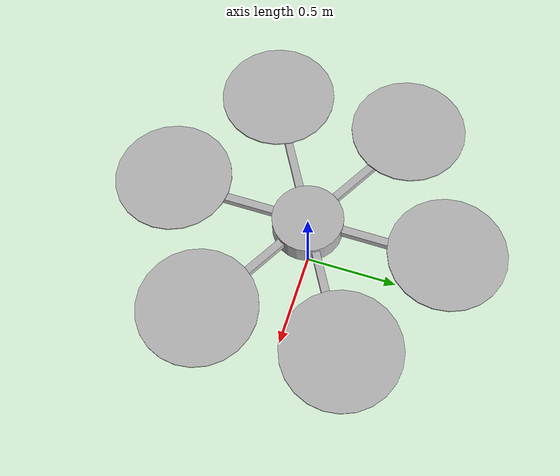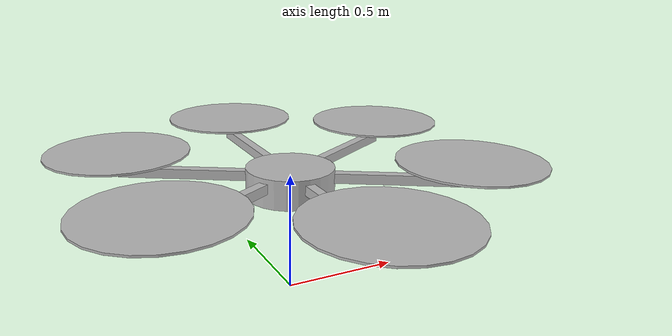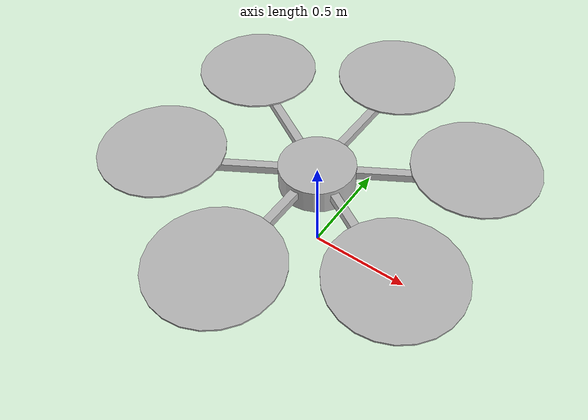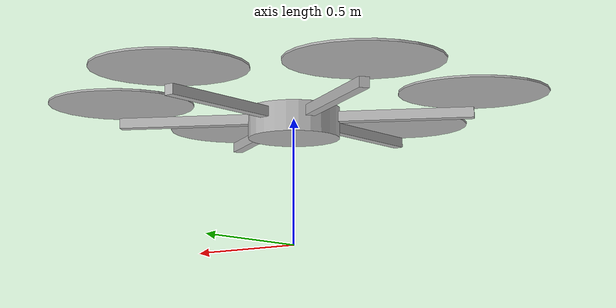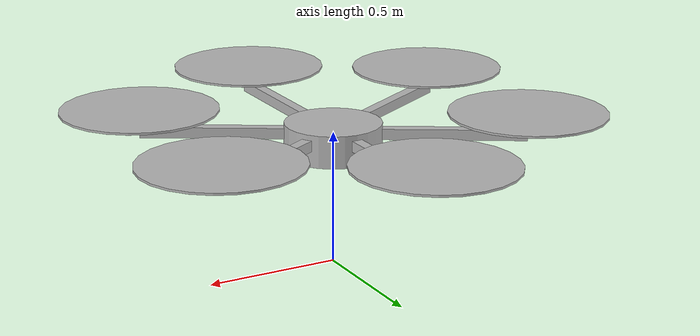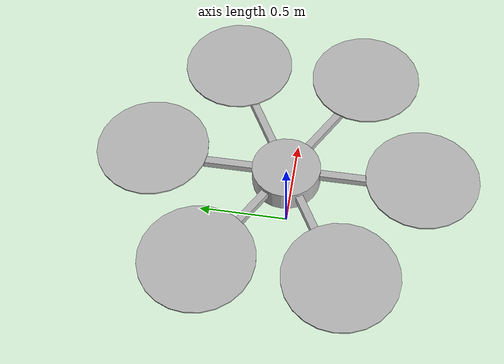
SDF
<?xml version='1.0' encoding='UTF-8'?>
<sdf version="1.9">
  <model name="skyscrub">
    <pose>0 0 0.48 0 0 0</pose>
    <static>false</static>
    <link name="base_link">
      <inertial>
        <mass>18.251000</mass>
        <inertia>
          <ixx>1.629577</ixx>
          <iyy>1.629577</iyy>
          <izz>3.133409</izz>
        </inertia>
      </inertial>
      <visual name="main_body_visual">
        <geometry>
          <cylinder>
            <radius>0.18</radius>
            <length>0.12</length>
          </cylinder>
        </geometry>
      </visual>
      <collision name="main_body_collision">
        <geometry>
          <cylinder>
            <radius>0.18</radius>
            <length>0.12</length>
          </cylinder>
        </geometry>
      </collision>
      <visual name="arm_0_visual">
        <pose>0.000000 0.351750 0.020000 0 0 1.57079633</pose>
        <geometry>
          <box>
            <size>0.703500 0.040 0.040</size>
          </box>
        </geometry>
      </visual>
      <collision name="arm_0_collision">
        <pose>0.000000 0.351750 0.020000 0 0 1.57079633</pose>
        <geometry>
          <box>
            <size>0.703500 0.035 0.035</size>
          </box>
        </geometry>
      </collision>
      <visual name="arm_1_visual">
        <pose>0.000000 -0.351750 0.020000 0 0 -1.57079633</pose>
        <geometry>
          <box>
            <size>0.703500 0.040 0.040</size>
          </box>
        </geometry>
      </visual>
      <collision name="arm_1_collision">
        <pose>0.000000 -0.351750 0.020000 0 0 -1.57079633</pose>
        <geometry>
          <box>
            <size>0.703500 0.035 0.035</size>
          </box>
        </geometry>
      </collision>
      <visual name="arm_2_visual">
        <pose>0.304624 -0.175875 0.020000 0 0 -0.52359878</pose>
        <geometry>
          <box>
            <size>0.703500 0.040 0.040</size>
          </box>
        </geometry>
      </visual>
      <collision name="arm_2_collision">
        <pose>0.304624 -0.175875 0.020000 0 0 -0.52359878</pose>
        <geometry>
          <box>
            <size>0.703500 0.035 0.035</size>
          </box>
        </geometry>
      </collision>
      <visual name="arm_3_visual">
        <pose>-0.304624 0.175875 0.020000 0 0 2.61799388</pose>
        <geometry>
          <box>
            <size>0.703500 0.040 0.040</size>
          </box>
        </geometry>
      </visual>
      <collision name="arm_3_collision">
        <pose>-0.304624 0.175875 0.020000 0 0 2.61799388</pose>
        <geometry>
          <box>
            <size>0.703500 0.035 0.035</size>
          </box>
        </geometry>
      </collision>
      <visual name="arm_4_visual">
        <pose>0.304624 0.175875 0.020000 0 0 0.52359878</pose>
        <geometry>
          <box>
            <size>0.703500 0.040 0.040</size>
          </box>
        </geometry>
      </visual>
      <collision name="arm_4_collision">
        <pose>0.304624 0.175875 0.020000 0 0 0.52359878</pose>
        <geometry>
          <box>
            <size>0.703500 0.035 0.035</size>
          </box>
        </geometry>
      </collision>
      <visual name="arm_5_visual">
        <pose>-0.304624 -0.175875 0.020000 0 0 -2.61799388</pose>
        <geometry>
          <box>
            <size>0.703500 0.040 0.040</size>
          </box>
        </geometry>
      </visual>
      <collision name="arm_5_collision">
        <pose>-0.304624 -0.175875 0.020000 0 0 -2.61799388</pose>
        <geometry>
          <box>
            <size>0.703500 0.035 0.035</size>
          </box>
        </geometry>
      </collision>
      <sensor name="air_pressure_sensor" type="air_pressure">
        <gz_frame_id>base_link</gz_frame_id>
        <always_on>1</always_on>
        <update_rate>50</update_rate>
        <air_pressure>
          <pressure>
            <noise type="gaussian">
              <mean>0</mean>
              <stddev>3</stddev>
            </noise>
          </pressure>
        </air_pressure>
      </sensor>
      <sensor name="magnetometer_sensor" type="magnetometer">
        <gz_frame_id>base_link</gz_frame_id>
        <always_on>1</always_on>
        <update_rate>100</update_rate>
        <magnetometer>
          <x>
            <noise type="gaussian">
              <mean>0</mean>
              <stddev>0.0001</stddev>
            </noise>
          </x>
          <y>
            <noise type="gaussian">
              <mean>0</mean>
              <stddev>0.0001</stddev>
            </noise>
          </y>
          <z>
            <noise type="gaussian">
              <mean>0</mean>
              <stddev>0.0001</stddev>
            </noise>
          </z>
        </magnetometer>
      </sensor>
      <sensor name="imu_sensor" type="imu">
        <gz_frame_id>base_link</gz_frame_id>
        <always_on>1</always_on>
        <update_rate>250</update_rate>
        <imu>
          <angular_velocity>
            <x>
              <noise type="gaussian">
                <mean>0.0</mean>
                <stddev>0.0008726646</stddev>
              </noise>
            </x>
            <y>
              <noise type="gaussian">
                <mean>0.0</mean>
                <stddev>0.0008726646</stddev>
              </noise>
            </y>
            <z>
              <noise type="gaussian">
                <mean>0.0</mean>
                <stddev>0.0008726646</stddev>
              </noise>
            </z>
          </angular_velocity>
          <linear_acceleration>
            <x>
              <noise type="gaussian">
                <mean>0.0</mean>
                <stddev>0.00637</stddev>
              </noise>
            </x>
            <y>
              <noise type="gaussian">
                <mean>0.0</mean>
                <stddev>0.00637</stddev>
              </noise>
            </y>
            <z>
              <noise type="gaussian">
                <mean>0.0</mean>
                <stddev>0.00686</stddev>
              </noise>
            </z>
          </linear_acceleration>
        </imu>
      </sensor>
      <sensor name="navsat_sensor" type="navsat">
        <gz_frame_id>base_link</gz_frame_id>
        <always_on>1</always_on>
        <update_rate>30</update_rate>
      </sensor>

      <!-- SkyScrub V0.3 front facade standoff sensor -->
      <sensor name="front_facade_range" type="gpu_lidar">
        <!-- +X is forward. Sensor is slightly ahead of the body. -->
        <pose>0.22 0 0.05 0 0 0</pose>

        <topic>/skyscrub/front/range</topic>

        <always_on>true</always_on>
        <update_rate>20</update_rate>
        <visualize>true</visualize>

        <ray>
          <scan>
            <horizontal>
              <samples>5</samples>
              <resolution>1</resolution>

              <!-- Narrow approximately 2 degree field of view -->
              <min_angle>-0.0174533</min_angle>
              <max_angle>0.0174533</max_angle>
            </horizontal>

            <vertical>
              <samples>1</samples>
              <resolution>1</resolution>
              <min_angle>0</min_angle>
              <max_angle>0</max_angle>
            </vertical>
          </scan>

          <range>
            <min>0.20</min>
            <max>20.0</max>
            <resolution>0.01</resolution>
          </range>
        </ray>
      </sensor>

    </link>
    <link name="rotor_0">
      <pose>0.000000 0.703500 0.100000 0 0 0</pose>
      <gravity>true</gravity>
      <inertial>
        <mass>0.107000</mass>
        <inertia>
          <ixx>0.00228295</ixx>
          <iyy>0.00228295</iyy>
          <izz>0.00456475</izz>
        </inertia>
      </inertial>
      <visual name="rotor_0_visual">
        <geometry>
          <cylinder>
            <radius>0.292100</radius>
            <length>0.008</length>
          </cylinder>
        </geometry>
      </visual>
    </link>
    <joint name="rotor_0_joint" type="revolute">
      <parent>base_link</parent>
      <child>rotor_0</child>
      <axis>
        <xyz>0 0 1</xyz>
      </axis>
    </joint>
    <link name="rotor_1">
      <pose>0.000000 -0.703500 0.100000 0 0 0</pose>
      <gravity>true</gravity>
      <inertial>
        <mass>0.107000</mass>
        <inertia>
          <ixx>0.00228295</ixx>
          <iyy>0.00228295</iyy>
          <izz>0.00456475</izz>
        </inertia>
      </inertial>
      <visual name="rotor_1_visual">
        <geometry>
          <cylinder>
            <radius>0.292100</radius>
            <length>0.008</length>
          </cylinder>
        </geometry>
      </visual>
    </link>
    <joint name="rotor_1_joint" type="revolute">
      <parent>base_link</parent>
      <child>rotor_1</child>
      <axis>
        <xyz>0 0 1</xyz>
      </axis>
    </joint>
    <link name="rotor_2">
      <pose>0.609249 -0.351750 0.100000 0 0 0</pose>
      <gravity>true</gravity>
      <inertial>
        <mass>0.107000</mass>
        <inertia>
          <ixx>0.00228295</ixx>
          <iyy>0.00228295</iyy>
          <izz>0.00456475</izz>
        </inertia>
      </inertial>
      <visual name="rotor_2_visual">
        <geometry>
          <cylinder>
            <radius>0.292100</radius>
            <length>0.008</length>
          </cylinder>
        </geometry>
      </visual>
    </link>
    <joint name="rotor_2_joint" type="revolute">
      <parent>base_link</parent>
      <child>rotor_2</child>
      <axis>
        <xyz>0 0 1</xyz>
      </axis>
    </joint>
    <link name="rotor_3">
      <pose>-0.609249 0.351750 0.100000 0 0 0</pose>
      <gravity>true</gravity>
      <inertial>
        <mass>0.107000</mass>
        <inertia>
          <ixx>0.00228295</ixx>
          <iyy>0.00228295</iyy>
          <izz>0.00456475</izz>
        </inertia>
      </inertial>
      <visual name="rotor_3_visual">
        <geometry>
          <cylinder>
            <radius>0.292100</radius>
            <length>0.008</length>
          </cylinder>
        </geometry>
      </visual>
    </link>
    <joint name="rotor_3_joint" type="revolute">
      <parent>base_link</parent>
      <child>rotor_3</child>
      <axis>
        <xyz>0 0 1</xyz>
      </axis>
    </joint>
    <link name="rotor_4">
      <pose>0.609249 0.351750 0.100000 0 0 0</pose>
      <gravity>true</gravity>
      <inertial>
        <mass>0.107000</mass>
        <inertia>
          <ixx>0.00228295</ixx>
          <iyy>0.00228295</iyy>
          <izz>0.00456475</izz>
        </inertia>
      </inertial>
      <visual name="rotor_4_visual">
        <geometry>
          <cylinder>
            <radius>0.292100</radius>
            <length>0.008</length>
          </cylinder>
        </geometry>
      </visual>
    </link>
    <joint name="rotor_4_joint" type="revolute">
      <parent>base_link</parent>
      <child>rotor_4</child>
      <axis>
        <xyz>0 0 1</xyz>
      </axis>
    </joint>
    <link name="rotor_5">
      <pose>-0.609249 -0.351750 0.100000 0 0 0</pose>
      <gravity>true</gravity>
      <inertial>
        <mass>0.107000</mass>
        <inertia>
          <ixx>0.00228295</ixx>
          <iyy>0.00228295</iyy>
          <izz>0.00456475</izz>
        </inertia>
      </inertial>
      <visual name="rotor_5_visual">
        <geometry>
          <cylinder>
            <radius>0.292100</radius>
            <length>0.008</length>
          </cylinder>
        </geometry>
      </visual>
    </link>
    <joint name="rotor_5_joint" type="revolute">
      <parent>base_link</parent>
      <child>rotor_5</child>
      <axis>
        <xyz>0 0 1</xyz>
      </axis>
    </joint>
    <plugin filename="gz-sim-multicopter-motor-model-system" name="gz::sim::systems::MulticopterMotorModel">
      <jointName>rotor_0_joint</jointName>
      <linkName>rotor_0</linkName>
      <turningDirection>cw</turningDirection>
      <timeConstantUp>0.0125</timeConstantUp>
      <timeConstantDown>0.025</timeConstantDown>
      <maxRotVelocity>649.053042</maxRotVelocity>
      <motorConstant>0.000255000</motorConstant>
      <momentConstant>0.016</momentConstant>
      <commandSubTopic>command/motor_speed</commandSubTopic>
      <motorNumber>0</motorNumber>
      <rotorDragCoefficient>0.000106428</rotorDragCoefficient>
      <rollingMomentCoefficient>1e-06</rollingMomentCoefficient>
      <rotorVelocitySlowdownSim>10</rotorVelocitySlowdownSim>
      <motorType>velocity</motorType>
    </plugin>
    <plugin filename="gz-sim-multicopter-motor-model-system" name="gz::sim::systems::MulticopterMotorModel">
      <jointName>rotor_1_joint</jointName>
      <linkName>rotor_1</linkName>
      <turningDirection>ccw</turningDirection>
      <timeConstantUp>0.0125</timeConstantUp>
      <timeConstantDown>0.025</timeConstantDown>
      <maxRotVelocity>649.053042</maxRotVelocity>
      <motorConstant>0.000255000</motorConstant>
      <momentConstant>0.016</momentConstant>
      <commandSubTopic>command/motor_speed</commandSubTopic>
      <motorNumber>1</motorNumber>
      <rotorDragCoefficient>0.000106428</rotorDragCoefficient>
      <rollingMomentCoefficient>1e-06</rollingMomentCoefficient>
      <rotorVelocitySlowdownSim>10</rotorVelocitySlowdownSim>
      <motorType>velocity</motorType>
    </plugin>
    <plugin filename="gz-sim-multicopter-motor-model-system" name="gz::sim::systems::MulticopterMotorModel">
      <jointName>rotor_2_joint</jointName>
      <linkName>rotor_2</linkName>
      <turningDirection>cw</turningDirection>
      <timeConstantUp>0.0125</timeConstantUp>
      <timeConstantDown>0.025</timeConstantDown>
      <maxRotVelocity>649.053042</maxRotVelocity>
      <motorConstant>0.000255000</motorConstant>
      <momentConstant>0.016</momentConstant>
      <commandSubTopic>command/motor_speed</commandSubTopic>
      <motorNumber>2</motorNumber>
      <rotorDragCoefficient>0.000106428</rotorDragCoefficient>
      <rollingMomentCoefficient>1e-06</rollingMomentCoefficient>
      <rotorVelocitySlowdownSim>10</rotorVelocitySlowdownSim>
      <motorType>velocity</motorType>
    </plugin>
    <plugin filename="gz-sim-multicopter-motor-model-system" name="gz::sim::systems::MulticopterMotorModel">
      <jointName>rotor_3_joint</jointName>
      <linkName>rotor_3</linkName>
      <turningDirection>ccw</turningDirection>
      <timeConstantUp>0.0125</timeConstantUp>
      <timeConstantDown>0.025</timeConstantDown>
      <maxRotVelocity>649.053042</maxRotVelocity>
      <motorConstant>0.000255000</motorConstant>
      <momentConstant>0.016</momentConstant>
      <commandSubTopic>command/motor_speed</commandSubTopic>
      <motorNumber>3</motorNumber>
      <rotorDragCoefficient>0.000106428</rotorDragCoefficient>
      <rollingMomentCoefficient>1e-06</rollingMomentCoefficient>
      <rotorVelocitySlowdownSim>10</rotorVelocitySlowdownSim>
      <motorType>velocity</motorType>
    </plugin>
    <plugin filename="gz-sim-multicopter-motor-model-system" name="gz::sim::systems::MulticopterMotorModel">
      <jointName>rotor_4_joint</jointName>
      <linkName>rotor_4</linkName>
      <turningDirection>ccw</turningDirection>
      <timeConstantUp>0.0125</timeConstantUp>
      <timeConstantDown>0.025</timeConstantDown>
      <maxRotVelocity>649.053042</maxRotVelocity>
      <motorConstant>0.000255000</motorConstant>
      <momentConstant>0.016</momentConstant>
      <commandSubTopic>command/motor_speed</commandSubTopic>
      <motorNumber>4</motorNumber>
      <rotorDragCoefficient>0.000106428</rotorDragCoefficient>
      <rollingMomentCoefficient>1e-06</rollingMomentCoefficient>
      <rotorVelocitySlowdownSim>10</rotorVelocitySlowdownSim>
      <motorType>velocity</motorType>
    </plugin>
    <plugin filename="gz-sim-multicopter-motor-model-system" name="gz::sim::systems::MulticopterMotorModel">
      <jointName>rotor_5_joint</jointName>
      <linkName>rotor_5</linkName>
      <turningDirection>cw</turningDirection>
      <timeConstantUp>0.0125</timeConstantUp>
      <timeConstantDown>0.025</timeConstantDown>
      <maxRotVelocity>649.053042</maxRotVelocity>
      <motorConstant>0.000255000</motorConstant>
      <momentConstant>0.016</momentConstant>
      <commandSubTopic>command/motor_speed</commandSubTopic>
      <motorNumber>5</motorNumber>
      <rotorDragCoefficient>0.000106428</rotorDragCoefficient>
      <rollingMomentCoefficient>1e-06</rollingMomentCoefficient>
      <rotorVelocitySlowdownSim>10</rotorVelocitySlowdownSim>
      <motorType>velocity</motorType>
    </plugin>
    <model name="water_packet_00">
      <pose>0.000 0.000 0.300 0 0 0</pose>
      <static>false</static>
      <link name="water">
        <gravity>true</gravity>
        <inertial>
          <mass>0.250000</mass>
          <inertia>
            <ixx>0.00004000</ixx>
            <iyy>0.00004000</iyy>
            <izz>0.00004000</izz>
          </inertia>
        </inertial>
      </link>
    </model>
    <plugin filename="gz-sim-detachable-joint-system" name="gz::sim::systems::DetachableJoint">
      <parent_link>base_link</parent_link>
      <child_model>water_packet_00</child_model>
      <child_link>water</child_link>
      <detach_topic>/skyscrub/water/detach/00</detach_topic>
      <attach_topic>/skyscrub/water/attach/00</attach_topic>
      <output_topic>/skyscrub/water/state/00</output_topic>
    </plugin>
    <model name="water_packet_01">
      <pose>0.000 0.000 0.300 0 0 0</pose>
      <static>false</static>
      <link name="water">
        <gravity>true</gravity>
        <inertial>
          <mass>0.250000</mass>
          <inertia>
            <ixx>0.00004000</ixx>
            <iyy>0.00004000</iyy>
            <izz>0.00004000</izz>
          </inertia>
        </inertial>
      </link>
    </model>
    <plugin filename="gz-sim-detachable-joint-system" name="gz::sim::systems::DetachableJoint">
      <parent_link>base_link</parent_link>
      <child_model>water_packet_01</child_model>
      <child_link>water</child_link>
      <detach_topic>/skyscrub/water/detach/01</detach_topic>
      <attach_topic>/skyscrub/water/attach/01</attach_topic>
      <output_topic>/skyscrub/water/state/01</output_topic>
    </plugin>
    <model name="water_packet_02">
      <pose>0.000 0.000 0.300 0 0 0</pose>
      <static>false</static>
      <link name="water">
        <gravity>true</gravity>
        <inertial>
          <mass>0.250000</mass>
          <inertia>
            <ixx>0.00004000</ixx>
            <iyy>0.00004000</iyy>
            <izz>0.00004000</izz>
          </inertia>
        </inertial>
      </link>
    </model>
    <plugin filename="gz-sim-detachable-joint-system" name="gz::sim::systems::DetachableJoint">
      <parent_link>base_link</parent_link>
      <child_model>water_packet_02</child_model>
      <child_link>water</child_link>
      <detach_topic>/skyscrub/water/detach/02</detach_topic>
      <attach_topic>/skyscrub/water/attach/02</attach_topic>
      <output_topic>/skyscrub/water/state/02</output_topic>
    </plugin>
    <model name="water_packet_03">
      <pose>0.000 0.000 0.300 0 0 0</pose>
      <static>false</static>
      <link name="water">
        <gravity>true</gravity>
        <inertial>
          <mass>0.250000</mass>
          <inertia>
            <ixx>0.00004000</ixx>
            <iyy>0.00004000</iyy>
            <izz>0.00004000</izz>
          </inertia>
        </inertial>
      </link>
    </model>
    <plugin filename="gz-sim-detachable-joint-system" name="gz::sim::systems::DetachableJoint">
      <parent_link>base_link</parent_link>
      <child_model>water_packet_03</child_model>
      <child_link>water</child_link>
      <detach_topic>/skyscrub/water/detach/03</detach_topic>
      <attach_topic>/skyscrub/water/attach/03</attach_topic>
      <output_topic>/skyscrub/water/state/03</output_topic>
    </plugin>
    <model name="water_packet_04">
      <pose>0.000 0.000 0.300 0 0 0</pose>
      <static>false</static>
      <link name="water">
        <gravity>true</gravity>
        <inertial>
          <mass>0.250000</mass>
          <inertia>
            <ixx>0.00004000</ixx>
            <iyy>0.00004000</iyy>
            <izz>0.00004000</izz>
          </inertia>
        </inertial>
      </link>
    </model>
    <plugin filename="gz-sim-detachable-joint-system" name="gz::sim::systems::DetachableJoint">
      <parent_link>base_link</parent_link>
      <child_model>water_packet_04</child_model>
      <child_link>water</child_link>
      <detach_topic>/skyscrub/water/detach/04</detach_topic>
      <attach_topic>/skyscrub/water/attach/04</attach_topic>
      <output_topic>/skyscrub/water/state/04</output_topic>
    </plugin>
    <model name="water_packet_05">
      <pose>0.000 0.000 0.300 0 0 0</pose>
      <static>false</static>
      <link name="water">
        <gravity>true</gravity>
        <inertial>
          <mass>0.250000</mass>
          <inertia>
            <ixx>0.00004000</ixx>
            <iyy>0.00004000</iyy>
            <izz>0.00004000</izz>
          </inertia>
        </inertial>
      </link>
    </model>
    <plugin filename="gz-sim-detachable-joint-system" name="gz::sim::systems::DetachableJoint">
      <parent_link>base_link</parent_link>
      <child_model>water_packet_05</child_model>
      <child_link>water</child_link>
      <detach_topic>/skyscrub/water/detach/05</detach_topic>
      <attach_topic>/skyscrub/water/attach/05</attach_topic>
      <output_topic>/skyscrub/water/state/05</output_topic>
    </plugin>
    <model name="water_packet_06">
      <pose>0.000 0.000 0.300 0 0 0</pose>
      <static>false</static>
      <link name="water">
        <gravity>true</gravity>
        <inertial>
          <mass>0.250000</mass>
          <inertia>
            <ixx>0.00004000</ixx>
            <iyy>0.00004000</iyy>
            <izz>0.00004000</izz>
          </inertia>
        </inertial>
      </link>
    </model>
    <plugin filename="gz-sim-detachable-joint-system" name="gz::sim::systems::DetachableJoint">
      <parent_link>base_link</parent_link>
      <child_model>water_packet_06</child_model>
      <child_link>water</child_link>
      <detach_topic>/skyscrub/water/detach/06</detach_topic>
      <attach_topic>/skyscrub/water/attach/06</attach_topic>
      <output_topic>/skyscrub/water/state/06</output_topic>
    </plugin>
    <model name="water_packet_07">
      <pose>0.000 0.000 0.300 0 0 0</pose>
      <static>false</static>
      <link name="water">
        <gravity>true</gravity>
        <inertial>
          <mass>0.250000</mass>
          <inertia>
            <ixx>0.00004000</ixx>
            <iyy>0.00004000</iyy>
            <izz>0.00004000</izz>
          </inertia>
        </inertial>
      </link>
    </model>
    <plugin filename="gz-sim-detachable-joint-system" name="gz::sim::systems::DetachableJoint">
      <parent_link>base_link</parent_link>
      <child_model>water_packet_07</child_model>
      <child_link>water</child_link>
      <detach_topic>/skyscrub/water/detach/07</detach_topic>
      <attach_topic>/skyscrub/water/attach/07</attach_topic>
      <output_topic>/skyscrub/water/state/07</output_topic>
    </plugin>
    <model name="water_packet_08">
      <pose>0.000 0.000 0.300 0 0 0</pose>
      <static>false</static>
      <link name="water">
        <gravity>true</gravity>
        <inertial>
          <mass>0.250000</mass>
          <inertia>
            <ixx>0.00004000</ixx>
            <iyy>0.00004000</iyy>
            <izz>0.00004000</izz>
          </inertia>
        </inertial>
      </link>
    </model>
    <plugin filename="gz-sim-detachable-joint-system" name="gz::sim::systems::DetachableJoint">
      <parent_link>base_link</parent_link>
      <child_model>water_packet_08</child_model>
      <child_link>water</child_link>
      <detach_topic>/skyscrub/water/detach/08</detach_topic>
      <attach_topic>/skyscrub/water/attach/08</attach_topic>
      <output_topic>/skyscrub/water/state/08</output_topic>
    </plugin>
    <model name="water_packet_09">
      <pose>0.000 0.000 0.300 0 0 0</pose>
      <static>false</static>
      <link name="water">
        <gravity>true</gravity>
        <inertial>
          <mass>0.250000</mass>
          <inertia>
            <ixx>0.00004000</ixx>
            <iyy>0.00004000</iyy>
            <izz>0.00004000</izz>
          </inertia>
        </inertial>
      </link>
    </model>
    <plugin filename="gz-sim-detachable-joint-system" name="gz::sim::systems::DetachableJoint">
      <parent_link>base_link</parent_link>
      <child_model>water_packet_09</child_model>
      <child_link>water</child_link>
      <detach_topic>/skyscrub/water/detach/09</detach_topic>
      <attach_topic>/skyscrub/water/attach/09</attach_topic>
      <output_topic>/skyscrub/water/state/09</output_topic>
    </plugin>
    <model name="water_packet_10">
      <pose>0.000 0.000 0.300 0 0 0</pose>
      <static>false</static>
      <link name="water">
        <gravity>true</gravity>
        <inertial>
          <mass>0.250000</mass>
          <inertia>
            <ixx>0.00004000</ixx>
            <iyy>0.00004000</iyy>
            <izz>0.00004000</izz>
          </inertia>
        </inertial>
      </link>
    </model>
    <plugin filename="gz-sim-detachable-joint-system" name="gz::sim::systems::DetachableJoint">
      <parent_link>base_link</parent_link>
      <child_model>water_packet_10</child_model>
      <child_link>water</child_link>
      <detach_topic>/skyscrub/water/detach/10</detach_topic>
      <attach_topic>/skyscrub/water/attach/10</attach_topic>
      <output_topic>/skyscrub/water/state/10</output_topic>
    </plugin>
    <model name="water_packet_11">
      <pose>0.000 0.000 0.300 0 0 0</pose>
      <static>false</static>
      <link name="water">
        <gravity>true</gravity>
        <inertial>
          <mass>0.250000</mass>
          <inertia>
            <ixx>0.00004000</ixx>
            <iyy>0.00004000</iyy>
            <izz>0.00004000</izz>
          </inertia>
        </inertial>
      </link>
    </model>
    <plugin filename="gz-sim-detachable-joint-system" name="gz::sim::systems::DetachableJoint">
      <parent_link>base_link</parent_link>
      <child_model>water_packet_11</child_model>
      <child_link>water</child_link>
      <detach_topic>/skyscrub/water/detach/11</detach_topic>
      <attach_topic>/skyscrub/water/attach/11</attach_topic>
      <output_topic>/skyscrub/water/state/11</output_topic>
    </plugin>
    <model name="water_packet_12">
      <pose>0.000 0.000 0.300 0 0 0</pose>
      <static>false</static>
      <link name="water">
        <gravity>true</gravity>
        <inertial>
          <mass>0.250000</mass>
          <inertia>
            <ixx>0.00004000</ixx>
            <iyy>0.00004000</iyy>
            <izz>0.00004000</izz>
          </inertia>
        </inertial>
      </link>
    </model>
    <plugin filename="gz-sim-detachable-joint-system" name="gz::sim::systems::DetachableJoint">
      <parent_link>base_link</parent_link>
      <child_model>water_packet_12</child_model>
      <child_link>water</child_link>
      <detach_topic>/skyscrub/water/detach/12</detach_topic>
      <attach_topic>/skyscrub/water/attach/12</attach_topic>
      <output_topic>/skyscrub/water/state/12</output_topic>
    </plugin>
    <model name="water_packet_13">
      <pose>0.000 0.000 0.300 0 0 0</pose>
      <static>false</static>
      <link name="water">
        <gravity>true</gravity>
        <inertial>
          <mass>0.250000</mass>
          <inertia>
            <ixx>0.00004000</ixx>
            <iyy>0.00004000</iyy>
            <izz>0.00004000</izz>
          </inertia>
        </inertial>
      </link>
    </model>
    <plugin filename="gz-sim-detachable-joint-system" name="gz::sim::systems::DetachableJoint">
      <parent_link>base_link</parent_link>
      <child_model>water_packet_13</child_model>
      <child_link>water</child_link>
      <detach_topic>/skyscrub/water/detach/13</detach_topic>
      <attach_topic>/skyscrub/water/attach/13</attach_topic>
      <output_topic>/skyscrub/water/state/13</output_topic>
    </plugin>
    <model name="water_packet_14">
      <pose>0.000 0.000 0.300 0 0 0</pose>
      <static>false</static>
      <link name="water">
        <gravity>true</gravity>
        <inertial>
          <mass>0.250000</mass>
          <inertia>
            <ixx>0.00004000</ixx>
            <iyy>0.00004000</iyy>
            <izz>0.00004000</izz>
          </inertia>
        </inertial>
      </link>
    </model>
    <plugin filename="gz-sim-detachable-joint-system" name="gz::sim::systems::DetachableJoint">
      <parent_link>base_link</parent_link>
      <child_model>water_packet_14</child_model>
      <child_link>water</child_link>
      <detach_topic>/skyscrub/water/detach/14</detach_topic>
      <attach_topic>/skyscrub/water/attach/14</attach_topic>
      <output_topic>/skyscrub/water/state/14</output_topic>
    </plugin>
    <model name="water_packet_15">
      <pose>0.000 0.000 0.300 0 0 0</pose>
      <static>false</static>
      <link name="water">
        <gravity>true</gravity>
        <inertial>
          <mass>0.250000</mass>
          <inertia>
            <ixx>0.00004000</ixx>
            <iyy>0.00004000</iyy>
            <izz>0.00004000</izz>
          </inertia>
        </inertial>
      </link>
    </model>
    <plugin filename="gz-sim-detachable-joint-system" name="gz::sim::systems::DetachableJoint">
      <parent_link>base_link</parent_link>
      <child_model>water_packet_15</child_model>
      <child_link>water</child_link>
      <detach_topic>/skyscrub/water/detach/15</detach_topic>
      <attach_topic>/skyscrub/water/attach/15</attach_topic>
      <output_topic>/skyscrub/water/state/15</output_topic>
    </plugin>
    <model name="water_packet_16">
      <pose>0.000 0.000 0.300 0 0 0</pose>
      <static>false</static>
      <link name="water">
        <gravity>true</gravity>
        <inertial>
          <mass>0.250000</mass>
          <inertia>
            <ixx>0.00004000</ixx>
            <iyy>0.00004000</iyy>
            <izz>0.00004000</izz>
          </inertia>
        </inertial>
      </link>
    </model>
    <plugin filename="gz-sim-detachable-joint-system" name="gz::sim::systems::DetachableJoint">
      <parent_link>base_link</parent_link>
      <child_model>water_packet_16</child_model>
      <child_link>water</child_link>
      <detach_topic>/skyscrub/water/detach/16</detach_topic>
      <attach_topic>/skyscrub/water/attach/16</attach_topic>
      <output_topic>/skyscrub/water/state/16</output_topic>
    </plugin>
    <model name="water_packet_17">
      <pose>0.000 0.000 0.300 0 0 0</pose>
      <static>false</static>
      <link name="water">
        <gravity>true</gravity>
        <inertial>
          <mass>0.250000</mass>
          <inertia>
            <ixx>0.00004000</ixx>
            <iyy>0.00004000</iyy>
            <izz>0.00004000</izz>
          </inertia>
        </inertial>
      </link>
    </model>
    <plugin filename="gz-sim-detachable-joint-system" name="gz::sim::systems::DetachableJoint">
      <parent_link>base_link</parent_link>
      <child_model>water_packet_17</child_model>
      <child_link>water</child_link>
      <detach_topic>/skyscrub/water/detach/17</detach_topic>
      <attach_topic>/skyscrub/water/attach/17</attach_topic>
      <output_topic>/skyscrub/water/state/17</output_topic>
    </plugin>
    <model name="water_packet_18">
      <pose>0.000 0.000 0.300 0 0 0</pose>
      <static>false</static>
      <link name="water">
        <gravity>true</gravity>
        <inertial>
          <mass>0.250000</mass>
          <inertia>
            <ixx>0.00004000</ixx>
            <iyy>0.00004000</iyy>
            <izz>0.00004000</izz>
          </inertia>
        </inertial>
      </link>
    </model>
    <plugin filename="gz-sim-detachable-joint-system" name="gz::sim::systems::DetachableJoint">
      <parent_link>base_link</parent_link>
      <child_model>water_packet_18</child_model>
      <child_link>water</child_link>
      <detach_topic>/skyscrub/water/detach/18</detach_topic>
      <attach_topic>/skyscrub/water/attach/18</attach_topic>
      <output_topic>/skyscrub/water/state/18</output_topic>
    </plugin>
    <model name="water_packet_19">
      <pose>0.000 0.000 0.300 0 0 0</pose>
      <static>false</static>
      <link name="water">
        <gravity>true</gravity>
        <inertial>
          <mass>0.250000</mass>
          <inertia>
            <ixx>0.00004000</ixx>
            <iyy>0.00004000</iyy>
            <izz>0.00004000</izz>
          </inertia>
        </inertial>
      </link>
    </model>
    <plugin filename="gz-sim-detachable-joint-system" name="gz::sim::systems::DetachableJoint">
      <parent_link>base_link</parent_link>
      <child_model>water_packet_19</child_model>
      <child_link>water</child_link>
      <detach_topic>/skyscrub/water/detach/19</detach_topic>
      <attach_topic>/skyscrub/water/attach/19</attach_topic>
      <output_topic>/skyscrub/water/state/19</output_topic>
    </plugin>
    <model name="water_packet_20">
      <pose>0.000 0.000 0.300 0 0 0</pose>
      <static>false</static>
      <link name="water">
        <gravity>true</gravity>
        <inertial>
          <mass>0.250000</mass>
          <inertia>
            <ixx>0.00004000</ixx>
            <iyy>0.00004000</iyy>
            <izz>0.00004000</izz>
          </inertia>
        </inertial>
      </link>
    </model>
    <plugin filename="gz-sim-detachable-joint-system" name="gz::sim::systems::DetachableJoint">
      <parent_link>base_link</parent_link>
      <child_model>water_packet_20</child_model>
      <child_link>water</child_link>
      <detach_topic>/skyscrub/water/detach/20</detach_topic>
      <attach_topic>/skyscrub/water/attach/20</attach_topic>
      <output_topic>/skyscrub/water/state/20</output_topic>
    </plugin>
    <model name="water_packet_21">
      <pose>0.000 0.000 0.300 0 0 0</pose>
      <static>false</static>
      <link name="water">
        <gravity>true</gravity>
        <inertial>
          <mass>0.250000</mass>
          <inertia>
            <ixx>0.00004000</ixx>
            <iyy>0.00004000</iyy>
            <izz>0.00004000</izz>
          </inertia>
        </inertial>
      </link>
    </model>
    <plugin filename="gz-sim-detachable-joint-system" name="gz::sim::systems::DetachableJoint">
      <parent_link>base_link</parent_link>
      <child_model>water_packet_21</child_model>
      <child_link>water</child_link>
      <detach_topic>/skyscrub/water/detach/21</detach_topic>
      <attach_topic>/skyscrub/water/attach/21</attach_topic>
      <output_topic>/skyscrub/water/state/21</output_topic>
    </plugin>
    <model name="water_packet_22">
      <pose>0.000 0.000 0.300 0 0 0</pose>
      <static>false</static>
      <link name="water">
        <gravity>true</gravity>
        <inertial>
          <mass>0.250000</mass>
          <inertia>
            <ixx>0.00004000</ixx>
            <iyy>0.00004000</iyy>
            <izz>0.00004000</izz>
          </inertia>
        </inertial>
      </link>
    </model>
    <plugin filename="gz-sim-detachable-joint-system" name="gz::sim::systems::DetachableJoint">
      <parent_link>base_link</parent_link>
      <child_model>water_packet_22</child_model>
      <child_link>water</child_link>
      <detach_topic>/skyscrub/water/detach/22</detach_topic>
      <attach_topic>/skyscrub/water/attach/22</attach_topic>
      <output_topic>/skyscrub/water/state/22</output_topic>
    </plugin>
    <model name="water_packet_23">
      <pose>0.000 0.000 0.300 0 0 0</pose>
      <static>false</static>
      <link name="water">
        <gravity>true</gravity>
        <inertial>
          <mass>0.250000</mass>
          <inertia>
            <ixx>0.00004000</ixx>
            <iyy>0.00004000</iyy>
            <izz>0.00004000</izz>
          </inertia>
        </inertial>
      </link>
    </model>
    <plugin filename="gz-sim-detachable-joint-system" name="gz::sim::systems::DetachableJoint">
      <parent_link>base_link</parent_link>
      <child_model>water_packet_23</child_model>
      <child_link>water</child_link>
      <detach_topic>/skyscrub/water/detach/23</detach_topic>
      <attach_topic>/skyscrub/water/attach/23</attach_topic>
      <output_topic>/skyscrub/water/state/23</output_topic>
    </plugin>
    <model name="water_packet_24">
      <pose>0.000 0.000 0.300 0 0 0</pose>
      <static>false</static>
      <link name="water">
        <gravity>true</gravity>
        <inertial>
          <mass>0.250000</mass>
          <inertia>
            <ixx>0.00004000</ixx>
            <iyy>0.00004000</iyy>
            <izz>0.00004000</izz>
          </inertia>
        </inertial>
      </link>
    </model>
    <plugin filename="gz-sim-detachable-joint-system" name="gz::sim::systems::DetachableJoint">
      <parent_link>base_link</parent_link>
      <child_model>water_packet_24</child_model>
      <child_link>water</child_link>
      <detach_topic>/skyscrub/water/detach/24</detach_topic>
      <attach_topic>/skyscrub/water/attach/24</attach_topic>
      <output_topic>/skyscrub/water/state/24</output_topic>
    </plugin>
    <model name="water_packet_25">
      <pose>0.000 0.000 0.300 0 0 0</pose>
      <static>false</static>
      <link name="water">
        <gravity>true</gravity>
        <inertial>
          <mass>0.250000</mass>
          <inertia>
            <ixx>0.00004000</ixx>
            <iyy>0.00004000</iyy>
            <izz>0.00004000</izz>
          </inertia>
        </inertial>
      </link>
    </model>
    <plugin filename="gz-sim-detachable-joint-system" name="gz::sim::systems::DetachableJoint">
      <parent_link>base_link</parent_link>
      <child_model>water_packet_25</child_model>
      <child_link>water</child_link>
      <detach_topic>/skyscrub/water/detach/25</detach_topic>
      <attach_topic>/skyscrub/water/attach/25</attach_topic>
      <output_topic>/skyscrub/water/state/25</output_topic>
    </plugin>
    <model name="water_packet_26">
      <pose>0.000 0.000 0.300 0 0 0</pose>
      <static>false</static>
      <link name="water">
        <gravity>true</gravity>
        <inertial>
          <mass>0.250000</mass>
          <inertia>
            <ixx>0.00004000</ixx>
            <iyy>0.00004000</iyy>
            <izz>0.00004000</izz>
          </inertia>
        </inertial>
      </link>
    </model>
    <plugin filename="gz-sim-detachable-joint-system" name="gz::sim::systems::DetachableJoint">
      <parent_link>base_link</parent_link>
      <child_model>water_packet_26</child_model>
      <child_link>water</child_link>
      <detach_topic>/skyscrub/water/detach/26</detach_topic>
      <attach_topic>/skyscrub/water/attach/26</attach_topic>
      <output_topic>/skyscrub/water/state/26</output_topic>
    </plugin>
    <model name="water_packet_27">
      <pose>0.000 0.000 0.300 0 0 0</pose>
      <static>false</static>
      <link name="water">
        <gravity>true</gravity>
        <inertial>
          <mass>0.250000</mass>
          <inertia>
            <ixx>0.00004000</ixx>
            <iyy>0.00004000</iyy>
            <izz>0.00004000</izz>
          </inertia>
        </inertial>
      </link>
    </model>
    <plugin filename="gz-sim-detachable-joint-system" name="gz::sim::systems::DetachableJoint">
      <parent_link>base_link</parent_link>
      <child_model>water_packet_27</child_model>
      <child_link>water</child_link>
      <detach_topic>/skyscrub/water/detach/27</detach_topic>
      <attach_topic>/skyscrub/water/attach/27</attach_topic>
      <output_topic>/skyscrub/water/state/27</output_topic>
    </plugin>
    <model name="water_packet_28">
      <pose>0.000 0.000 0.300 0 0 0</pose>
      <static>false</static>
      <link name="water">
        <gravity>true</gravity>
        <inertial>
          <mass>0.250000</mass>
          <inertia>
            <ixx>0.00004000</ixx>
            <iyy>0.00004000</iyy>
            <izz>0.00004000</izz>
          </inertia>
        </inertial>
      </link>
    </model>
    <plugin filename="gz-sim-detachable-joint-system" name="gz::sim::systems::DetachableJoint">
      <parent_link>base_link</parent_link>
      <child_model>water_packet_28</child_model>
      <child_link>water</child_link>
      <detach_topic>/skyscrub/water/detach/28</detach_topic>
      <attach_topic>/skyscrub/water/attach/28</attach_topic>
      <output_topic>/skyscrub/water/state/28</output_topic>
    </plugin>
    <model name="water_packet_29">
      <pose>0.000 0.000 0.300 0 0 0</pose>
      <static>false</static>
      <link name="water">
        <gravity>true</gravity>
        <inertial>
          <mass>0.250000</mass>
          <inertia>
            <ixx>0.00004000</ixx>
            <iyy>0.00004000</iyy>
            <izz>0.00004000</izz>
          </inertia>
        </inertial>
      </link>
    </model>
    <plugin filename="gz-sim-detachable-joint-system" name="gz::sim::systems::DetachableJoint">
      <parent_link>base_link</parent_link>
      <child_model>water_packet_29</child_model>
      <child_link>water</child_link>
      <detach_topic>/skyscrub/water/detach/29</detach_topic>
      <attach_topic>/skyscrub/water/attach/29</attach_topic>
      <output_topic>/skyscrub/water/state/29</output_topic>
    </plugin>
    <model name="water_packet_30">
      <pose>0.000 0.000 0.300 0 0 0</pose>
      <static>false</static>
      <link name="water">
        <gravity>true</gravity>
        <inertial>
          <mass>0.250000</mass>
          <inertia>
            <ixx>0.00004000</ixx>
            <iyy>0.00004000</iyy>
            <izz>0.00004000</izz>
          </inertia>
        </inertial>
      </link>
    </model>
    <plugin filename="gz-sim-detachable-joint-system" name="gz::sim::systems::DetachableJoint">
      <parent_link>base_link</parent_link>
      <child_model>water_packet_30</child_model>
      <child_link>water</child_link>
      <detach_topic>/skyscrub/water/detach/30</detach_topic>
      <attach_topic>/skyscrub/water/attach/30</attach_topic>
      <output_topic>/skyscrub/water/state/30</output_topic>
    </plugin>
    <model name="water_packet_31">
      <pose>0.000 0.000 0.300 0 0 0</pose>
      <static>false</static>
      <link name="water">
        <gravity>true</gravity>
        <inertial>
          <mass>0.250000</mass>
          <inertia>
            <ixx>0.00004000</ixx>
            <iyy>0.00004000</iyy>
            <izz>0.00004000</izz>
          </inertia>
        </inertial>
      </link>
    </model>
    <plugin filename="gz-sim-detachable-joint-system" name="gz::sim::systems::DetachableJoint">
      <parent_link>base_link</parent_link>
      <child_model>water_packet_31</child_model>
      <child_link>water</child_link>
      <detach_topic>/skyscrub/water/detach/31</detach_topic>
      <attach_topic>/skyscrub/water/attach/31</attach_topic>
      <output_topic>/skyscrub/water/state/31</output_topic>
    </plugin>
  </model>
</sdf>
